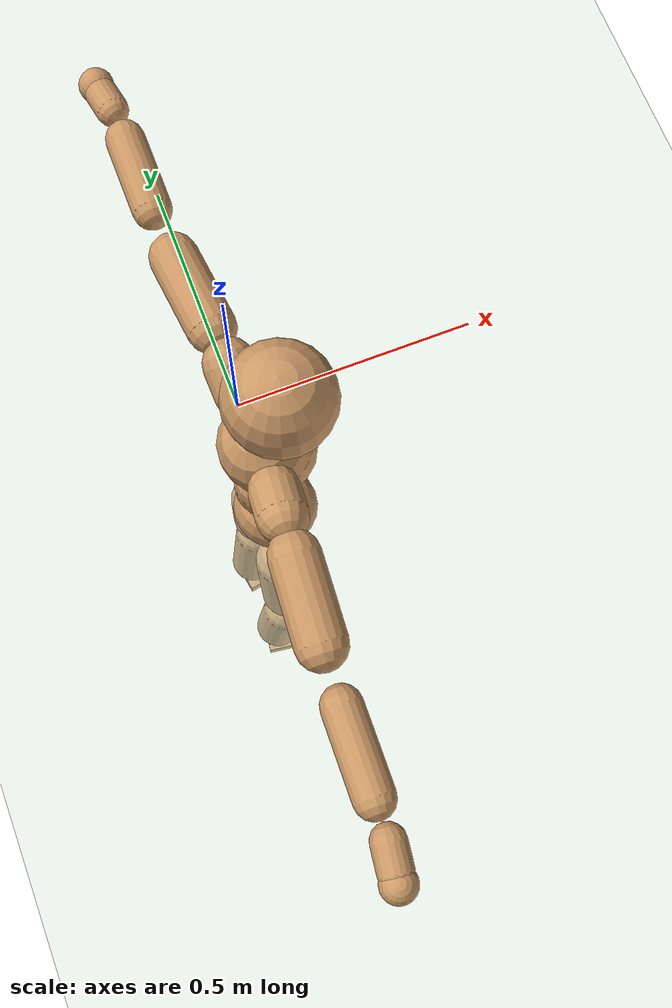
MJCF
<mujoco model="humanoid">
  <compiler coordinate="local"/>
  <default>
    <joint damping="0.0" armature="0.01" stiffness="0.0" limited="true"/>
    <geom conaffinity="1" condim="3" contype="7" margin="0.001" rgba="0.8 0.6 .4 1"/>
  </default>
  <asset>
    <texture type="skybox" builtin="gradient" rgb1=".4 .5 .6" rgb2="0 0 0" width="100" height="100"/>
    <texture builtin="flat" height="1278" mark="cross" markrgb="1 1 1" name="texgeom" random="0.01" rgb1="0.8 0.6 0.4" rgb2="0.8 0.6 0.4" type="cube" width="127"/>
    <texture builtin="checker" height="100" name="texplane" rgb1="0 0 0" rgb2="0.8 0.8 0.8" type="2d" width="100"/>
    <material name="MatPlane" reflectance="0.5" shininess="1" specular="1" texrepeat="60 60" texture="texplane"/>
    <material name="geom" texture="texgeom" texuniform="true"/>
  </asset>
  <worldbody>
    <light cutoff="100" diffuse="1 1 1" dir="-0 0 -1.3" directional="true" exponent="1" pos="0 0 1.3" specular=".1 .1 .1"/>
    <geom conaffinity="1" condim="3" name="floor" pos="0 0 0" rgba="0.8 0.9 0.8 1" size="100 100 .2" type="plane" material="MatPlane"/>
    <body name="Pelvis" pos="-0.0028 -0.2245 0.0141">
      <freejoint name="Pelvis"/>
      <geom type="sphere" contype="1" conaffinity="1" density="500" size="0.0823" pos="0.0000 0.0000 0.0000" name="Pelvis"/>
      <body name="L_Hip" pos="-0.0169 0.0626 -0.0894">
        <joint name="L_Hip_x" type="hinge" pos="0 0 0" axis="1 0 0" stiffness="800" damping="80" armature="0.02" range="-180.0000 180.0000"/>
        <joint name="L_Hip_y" type="hinge" pos="0 0 0" axis="0 1 0" stiffness="800" damping="80" armature="0.02" range="-180.0000 180.0000"/>
        <joint name="L_Hip_z" type="hinge" pos="0 0 0" axis="0 0 1" stiffness="800" damping="80" armature="0.02" range="-180.0000 180.0000"/>
        <geom type="capsule" contype="1" conaffinity="1" density="500" fromto="0.0006 0.0070 -0.0732 0.0024 0.0281 -0.2928" size="0.0559" name="L_Hip"/>
        <body name="L_Knee" pos="0.003 0.0352 -0.366">
          <joint name="L_Knee_x" type="hinge" pos="0 0 0" axis="1 0 0" stiffness="800" damping="80" armature="0.02" range="-180.0000 180.0000"/>
          <joint name="L_Knee_y" type="hinge" pos="0 0 0" axis="0 1 0" stiffness="800" damping="80" armature="0.02" range="-180.0000 180.0000"/>
          <joint name="L_Knee_z" type="hinge" pos="0 0 0" axis="0 0 1" stiffness="800" damping="80" armature="0.02" range="-180.0000 180.0000"/>
          <geom type="capsule" contype="1" conaffinity="1" density="500" fromto="-0.0080 -0.0026 -0.0762 -0.0319 -0.0103 -0.3048" size="0.0501" name="L_Knee"/>
          <body name="L_Ankle" pos="-0.0399 -0.0129 -0.381">
            <joint name="L_Ankle_x" type="hinge" pos="0 0 0" axis="1 0 0" stiffness="800" damping="80" armature="0.02" range="-180.0000 180.0000"/>
            <joint name="L_Ankle_y" type="hinge" pos="0 0 0" axis="0 1 0" stiffness="800" damping="80" armature="0.02" range="-180.0000 180.0000"/>
            <joint name="L_Ankle_z" type="hinge" pos="0 0 0" axis="0 0 1" stiffness="800" damping="80" armature="0.02" range="-180.0000 180.0000"/>
            <geom type="box" contype="1" conaffinity="1" density="500" pos="0.0577 0.0091 -0.0266" size="0.0817 0.0428 0.0193" quat="0.9970 0.0000 0.0000 0.0780" name="L_Ankle"/>
            <body name="L_Toe" pos="0.1153 0.0182 -0.0532">
              <joint name="L_Toe_x" type="hinge" pos="0 0 0" axis="1 0 0" stiffness="500" damping="50" armature="0.02" range="-180.0000 180.0000"/>
              <joint name="L_Toe_y" type="hinge" pos="0 0 0" axis="0 1 0" stiffness="500" damping="50" armature="0.02" range="-180.0000 180.0000"/>
              <joint name="L_Toe_z" type="hinge" pos="0 0 0" axis="0 0 1" stiffness="500" damping="50" armature="0.02" range="-180.0000 180.0000"/>
              <geom type="box" contype="1" conaffinity="1" density="500" pos="0.0000 0.0000 0.0265" size="0.0009 0.0022 0.001" quat="0.9964 0.0000 0.0000 0.0850" name="L_Toe"/>
            </body>
          </body>
        </body>
      </body>
      <body name="R_Hip" pos="-0.0133 -0.0597 -0.0879">
        <joint name="R_Hip_x" type="hinge" pos="0 0 0" axis="1 0 0" stiffness="800" damping="80" armature="0.02" range="-180.0000 180.0000"/>
        <joint name="R_Hip_y" type="hinge" pos="0 0 0" axis="0 1 0" stiffness="800" damping="80" armature="0.02" range="-180.0000 180.0000"/>
        <joint name="R_Hip_z" type="hinge" pos="0 0 0" axis="0 0 1" stiffness="800" damping="80" armature="0.02" range="-180.0000 180.0000"/>
        <geom type="capsule" contype="1" conaffinity="1" density="500" fromto="-0.0002 -0.0079 -0.0749 -0.0008 -0.0315 -0.2996" size="0.0551" name="R_Hip"/>
        <body name="R_Knee" pos="-0.001 -0.0394 -0.3745">
          <joint name="R_Knee_x" type="hinge" pos="0 0 0" axis="1 0 0" stiffness="800" damping="80" armature="0.02" range="-180.0000 180.0000"/>
          <joint name="R_Knee_y" type="hinge" pos="0 0 0" axis="0 1 0" stiffness="800" damping="80" armature="0.02" range="-180.0000 180.0000"/>
          <joint name="R_Knee_z" type="hinge" pos="0 0 0" axis="0 0 1" stiffness="800" damping="80" armature="0.02" range="-180.0000 180.0000"/>
          <geom type="capsule" contype="1" conaffinity="1" density="500" fromto="-0.0075 0.0031 -0.0758 -0.0299 0.0125 -0.3030" size="0.0505" name="R_Knee"/>
          <body name="R_Ankle" pos="-0.0374 0.0156 -0.3788">
            <joint name="R_Ankle_x" type="hinge" pos="0 0 0" axis="1 0 0" stiffness="800" damping="80" armature="0.02" range="-180.0000 180.0000"/>
            <joint name="R_Ankle_y" type="hinge" pos="0 0 0" axis="0 1 0" stiffness="800" damping="80" armature="0.02" range="-180.0000 180.0000"/>
            <joint name="R_Ankle_z" type="hinge" pos="0 0 0" axis="0 0 1" stiffness="800" damping="80" armature="0.02" range="-180.0000 180.0000"/>
            <geom type="box" contype="1" conaffinity="1" density="500" pos="0.0590 -0.0079 -0.0224" size="0.0828 0.0448 0.0186" quat="0.9978 0.0000 0.0000 -0.0668" name="R_Ankle"/>
            <body name="R_Toe" pos="0.118 -0.0159 -0.0449">
              <joint name="R_Toe_x" type="hinge" pos="0 0 0" axis="1 0 0" stiffness="500" damping="50" armature="0.02" range="-180.0000 180.0000"/>
              <joint name="R_Toe_y" type="hinge" pos="0 0 0" axis="0 1 0" stiffness="500" damping="50" armature="0.02" range="-180.0000 180.0000"/>
              <joint name="R_Toe_z" type="hinge" pos="0 0 0" axis="0 0 1" stiffness="500" damping="50" armature="0.02" range="-180.0000 180.0000"/>
              <geom type="box" contype="1" conaffinity="1" density="500" pos="0.0000 0.0000 0.0253" size="0.0008 0.0022 0.0011" quat="0.9983 0.0000 0.0000 -0.0575" name="R_Toe"/>
            </body>
          </body>
        </body>
      </body>
      <body name="Torso" pos="-0.0123 -0.0036 0.1034">
        <joint name="Torso_x" type="hinge" pos="0 0 0" axis="1 0 0" stiffness="1000" damping="100" armature="0.02" range="-180.0000 180.0000"/>
        <joint name="Torso_y" type="hinge" pos="0 0 0" axis="0 1 0" stiffness="1000" damping="100" armature="0.02" range="-180.0000 180.0000"/>
        <joint name="Torso_z" type="hinge" pos="0 0 0" axis="0 0 1" stiffness="1000" damping="100" armature="0.02" range="-180.0000 180.0000"/>
        <geom type="capsule" contype="1" conaffinity="1" density="500" fromto="0.0008 0.0033 0.0904 0.0005 0.0022 0.0602" size="0.0602" name="Torso"/>
        <body name="Spine" pos="0.0013 0.0055 0.1506">
          <joint name="Spine_x" type="hinge" pos="0 0 0" axis="1 0 0" stiffness="1000" damping="100" armature="0.02" range="-180.0000 180.0000"/>
          <joint name="Spine_y" type="hinge" pos="0 0 0" axis="0 1 0" stiffness="1000" damping="100" armature="0.02" range="-180.0000 180.0000"/>
          <joint name="Spine_z" type="hinge" pos="0 0 0" axis="0 0 1" stiffness="1000" damping="100" armature="0.02" range="-180.0000 180.0000"/>
          <geom type="capsule" contype="1" conaffinity="1" density="500" fromto="0.0152 0.0015 0.0308 0.0102 0.0010 0.0206" size="0.0601" name="Spine"/>
          <body name="Chest" pos="0.0254 0.0025 0.0514">
            <joint name="Chest_x" type="hinge" pos="0 0 0" axis="1 0 0" stiffness="1000" damping="100" armature="0.02" range="-180.0000 180.0000"/>
            <joint name="Chest_y" type="hinge" pos="0 0 0" axis="0 1 0" stiffness="1000" damping="100" armature="0.02" range="-180.0000 180.0000"/>
            <joint name="Chest_z" type="hinge" pos="0 0 0" axis="0 0 1" stiffness="1000" damping="100" armature="0.02" range="-180.0000 180.0000"/>
            <geom type="capsule" contype="1" conaffinity="1" density="500" fromto="-0.0216 -0.0009 0.0846 -0.0144 -0.0006 0.0564" size="0.0827" name="Chest"/>
            <body name="Neck" pos="-0.0411 -0.003 0.202">
              <joint name="Neck_x" type="hinge" pos="0 0 0" axis="1 0 0" stiffness="500" damping="50" armature="0.02" range="-180.0000 180.0000"/>
              <joint name="Neck_y" type="hinge" pos="0 0 0" axis="0 1 0" stiffness="500" damping="50" armature="0.02" range="-180.0000 180.0000"/>
              <joint name="Neck_z" type="hinge" pos="0 0 0" axis="0 0 1" stiffness="500" damping="50" armature="0.02" range="-180.0000 180.0000"/>
              <geom type="capsule" contype="1" conaffinity="1" density="500" fromto="0.0101 0.0011 0.0135 0.0404 0.0045 0.0540" size="0.0386" name="Neck"/>
              <body name="Head" pos="0.0505 0.0057 0.0675">
                <joint name="Head_x" type="hinge" pos="0 0 0" axis="1 0 0" stiffness="500" damping="50" armature="0.02" range="-180.0000 180.0000"/>
                <joint name="Head_y" type="hinge" pos="0 0 0" axis="0 1 0" stiffness="500" damping="50" armature="0.02" range="-180.0000 180.0000"/>
                <joint name="Head_z" type="hinge" pos="0 0 0" axis="0 0 1" stiffness="500" damping="50" armature="0.02" range="-180.0000 180.0000"/>
                <geom type="sphere" contype="1" conaffinity="1" density="500" size="0.0952" pos="0.0000 0.0000 0.0000" name="Head"/>
              </body>
            </body>
            <body name="L_Thorax" pos="-0.031 0.0701 0.1121">
              <joint name="L_Thorax_x" type="hinge" pos="0 0 0" axis="1 0 0" stiffness="500" damping="50" armature="0.02" range="-180.0000 180.0000"/>
              <joint name="L_Thorax_y" type="hinge" pos="0 0 0" axis="0 1 0" stiffness="500" damping="50" armature="0.02" range="-180.0000 180.0000"/>
              <joint name="L_Thorax_z" type="hinge" pos="0 0 0" axis="0 0 1" stiffness="500" damping="50" armature="0.02" range="-180.0000 180.0000"/>
              <geom type="capsule" contype="1" conaffinity="1" density="500" fromto="-0.0007 0.0166 0.0063 -0.0028 0.0663 0.0252" size="0.0455" name="L_Thorax"/>
              <body name="L_Shoulder" pos="-0.0036 0.0829 0.0315">
                <joint name="L_Shoulder_x" type="hinge" pos="0 0 0" axis="1 0 0" stiffness="500" damping="50" armature="0.02" range="-720.0000 720.0000"/>
                <joint name="L_Shoulder_y" type="hinge" pos="0 0 0" axis="0 1 0" stiffness="500" damping="50" armature="0.02" range="-720.0000 720.0000"/>
                <joint name="L_Shoulder_z" type="hinge" pos="0 0 0" axis="0 0 1" stiffness="500" damping="50" armature="0.02" range="-720.0000 720.0000"/>
                <geom type="capsule" contype="1" conaffinity="1" density="500" fromto="-0.0053 0.0505 -0.0031 -0.0213 0.2019 -0.0123" size="0.0435" name="L_Shoulder"/>
                <body name="L_Elbow" pos="-0.0267 0.2524 -0.0154">
                  <joint name="L_Elbow_x" type="hinge" pos="0 0 0" axis="1 0 0" stiffness="500" damping="50" armature="0.02" range="-720.0000 720.0000"/>
                  <joint name="L_Elbow_y" type="hinge" pos="0 0 0" axis="0 1 0" stiffness="500" damping="50" armature="0.02" range="-720.0000 720.0000"/>
                  <joint name="L_Elbow_z" type="hinge" pos="0 0 0" axis="0 0 1" stiffness="500" damping="50" armature="0.02" range="-720.0000 720.0000"/>
                  <geom type="capsule" contype="1" conaffinity="1" density="500" fromto="-0.0002 0.0481 0.0015 -0.0007 0.1923 0.0062" size="0.0353" name="L_Elbow"/>
                  <body name="L_Wrist" pos="-0.0009 0.2404 0.0077">
                    <joint name="L_Wrist_x" type="hinge" pos="0 0 0" axis="1 0 0" stiffness="300" damping="30" armature="0.02" range="-180.0000 180.0000"/>
                    <joint name="L_Wrist_y" type="hinge" pos="0 0 0" axis="0 1 0" stiffness="300" damping="30" armature="0.02" range="-180.0000 180.0000"/>
                    <joint name="L_Wrist_z" type="hinge" pos="0 0 0" axis="0 0 1" stiffness="300" damping="30" armature="0.02" range="-180.0000 180.0000"/>
                    <geom type="capsule" contype="1" conaffinity="1" density="500" fromto="-0.0026 0.0157 -0.0020 -0.0106 0.0629 -0.0078" size="0.0293" name="L_Wrist"/>
                    <body name="L_Hand" pos="-0.0132 0.0787 -0.0098">
                      <joint name="L_Hand_x" type="hinge" pos="0 0 0" axis="1 0 0" stiffness="300" damping="30" armature="0.02" range="-180.0000 180.0000"/>
                      <joint name="L_Hand_y" type="hinge" pos="0 0 0" axis="0 1 0" stiffness="300" damping="30" armature="0.02" range="-180.0000 180.0000"/>
                      <joint name="L_Hand_z" type="hinge" pos="0 0 0" axis="0 0 1" stiffness="300" damping="30" armature="0.02" range="-180.0000 180.0000"/>
                      <geom type="sphere" contype="1" conaffinity="1" density="500" size="0.0317" pos="0.0000 0.0000 0.0000" name="L_Hand"/>
                    </body>
                  </body>
                </body>
              </body>
            </body>
            <body name="R_Thorax" pos="-0.0359 -0.0715 0.109">
              <joint name="R_Thorax_x" type="hinge" pos="0 0 0" axis="1 0 0" stiffness="500" damping="50" armature="0.02" range="-180.0000 180.0000"/>
              <joint name="R_Thorax_y" type="hinge" pos="0 0 0" axis="0 1 0" stiffness="500" damping="50" armature="0.02" range="-180.0000 180.0000"/>
              <joint name="R_Thorax_z" type="hinge" pos="0 0 0" axis="0 0 1" stiffness="500" damping="50" armature="0.02" range="-180.0000 180.0000"/>
              <geom type="capsule" contype="1" conaffinity="1" density="500" fromto="-0.0015 -0.0175 0.0063 -0.0059 -0.0702 0.0253" size="0.0443" name="R_Thorax"/>
              <body name="R_Shoulder" pos="-0.0074 -0.0877 0.0316">
                <joint name="R_Shoulder_x" type="hinge" pos="0 0 0" axis="1 0 0" stiffness="500" damping="50" armature="0.02" range="-720.0000 720.0000"/>
                <joint name="R_Shoulder_y" type="hinge" pos="0 0 0" axis="0 1 0" stiffness="500" damping="50" armature="0.02" range="-720.0000 720.0000"/>
                <joint name="R_Shoulder_z" type="hinge" pos="0 0 0" axis="0 0 1" stiffness="500" damping="50" armature="0.02" range="-720.0000 720.0000"/>
                <geom type="capsule" contype="1" conaffinity="1" density="500" fromto="-0.0033 -0.0491 -0.0027 -0.0131 -0.1962 -0.0109" size="0.0447" name="R_Shoulder"/>
                <body name="R_Elbow" pos="-0.0164 -0.2453 -0.0136">
                  <joint name="R_Elbow_x" type="hinge" pos="0 0 0" axis="1 0 0" stiffness="500" damping="50" armature="0.02" range="-720.0000 720.0000"/>
                  <joint name="R_Elbow_y" type="hinge" pos="0 0 0" axis="0 1 0" stiffness="500" damping="50" armature="0.02" range="-720.0000 720.0000"/>
                  <joint name="R_Elbow_z" type="hinge" pos="0 0 0" axis="0 0 1" stiffness="500" damping="50" armature="0.02" range="-720.0000 720.0000"/>
                  <geom type="capsule" contype="1" conaffinity="1" density="500" fromto="-0.0012 -0.0492 0.0010 -0.0049 -0.1968 0.0041" size="0.0351" name="R_Elbow"/>
                  <body name="R_Wrist" pos="-0.0062 -0.2461 0.0051">
                    <joint name="R_Wrist_x" type="hinge" pos="0 0 0" axis="1 0 0" stiffness="300" damping="30" armature="0.02" range="-180.0000 180.0000"/>
                    <joint name="R_Wrist_y" type="hinge" pos="0 0 0" axis="0 1 0" stiffness="300" damping="30" armature="0.02" range="-180.0000 180.0000"/>
                    <joint name="R_Wrist_z" type="hinge" pos="0 0 0" axis="0 0 1" stiffness="300" damping="30" armature="0.02" range="-180.0000 180.0000"/>
                    <geom type="capsule" contype="1" conaffinity="1" density="500" fromto="-0.0020 -0.0157 -0.0014 -0.0080 -0.0628 -0.0056" size="0.0296" name="R_Wrist"/>
                    <body name="R_Hand" pos="-0.01 -0.0785 -0.007">
                      <joint name="R_Hand_x" type="hinge" pos="0 0 0" axis="1 0 0" stiffness="300" damping="30" armature="0.02" range="-180.0000 180.0000"/>
                      <joint name="R_Hand_y" type="hinge" pos="0 0 0" axis="0 1 0" stiffness="300" damping="30" armature="0.02" range="-180.0000 180.0000"/>
                      <joint name="R_Hand_z" type="hinge" pos="0 0 0" axis="0 0 1" stiffness="300" damping="30" armature="0.02" range="-180.0000 180.0000"/>
                      <geom type="sphere" contype="1" conaffinity="1" density="500" size="0.0314" pos="0.0000 0.0000 0.0000" name="R_Hand"/>
                    </body>
                  </body>
                </body>
              </body>
            </body>
          </body>
        </body>
      </body>
    </body>
  </worldbody>
  <actuator>
    <motor name="L_Hip_x" joint="L_Hip_x" gear="500"/>
    <motor name="L_Hip_y" joint="L_Hip_y" gear="500"/>
    <motor name="L_Hip_z" joint="L_Hip_z" gear="500"/>
    <motor name="L_Knee_x" joint="L_Knee_x" gear="500"/>
    <motor name="L_Knee_y" joint="L_Knee_y" gear="500"/>
    <motor name="L_Knee_z" joint="L_Knee_z" gear="500"/>
    <motor name="L_Ankle_x" joint="L_Ankle_x" gear="500"/>
    <motor name="L_Ankle_y" joint="L_Ankle_y" gear="500"/>
    <motor name="L_Ankle_z" joint="L_Ankle_z" gear="500"/>
    <motor name="L_Toe_x" joint="L_Toe_x" gear="500"/>
    <motor name="L_Toe_y" joint="L_Toe_y" gear="500"/>
    <motor name="L_Toe_z" joint="L_Toe_z" gear="500"/>
    <motor name="R_Hip_x" joint="R_Hip_x" gear="500"/>
    <motor name="R_Hip_y" joint="R_Hip_y" gear="500"/>
    <motor name="R_Hip_z" joint="R_Hip_z" gear="500"/>
    <motor name="R_Knee_x" joint="R_Knee_x" gear="500"/>
    <motor name="R_Knee_y" joint="R_Knee_y" gear="500"/>
    <motor name="R_Knee_z" joint="R_Knee_z" gear="500"/>
    <motor name="R_Ankle_x" joint="R_Ankle_x" gear="500"/>
    <motor name="R_Ankle_y" joint="R_Ankle_y" gear="500"/>
    <motor name="R_Ankle_z" joint="R_Ankle_z" gear="500"/>
    <motor name="R_Toe_x" joint="R_Toe_x" gear="500"/>
    <motor name="R_Toe_y" joint="R_Toe_y" gear="500"/>
    <motor name="R_Toe_z" joint="R_Toe_z" gear="500"/>
    <motor name="Torso_x" joint="Torso_x" gear="500"/>
    <motor name="Torso_y" joint="Torso_y" gear="500"/>
    <motor name="Torso_z" joint="Torso_z" gear="500"/>
    <motor name="Spine_x" joint="Spine_x" gear="500"/>
    <motor name="Spine_y" joint="Spine_y" gear="500"/>
    <motor name="Spine_z" joint="Spine_z" gear="500"/>
    <motor name="Chest_x" joint="Chest_x" gear="500"/>
    <motor name="Chest_y" joint="Chest_y" gear="500"/>
    <motor name="Chest_z" joint="Chest_z" gear="500"/>
    <motor name="Neck_x" joint="Neck_x" gear="500"/>
    <motor name="Neck_y" joint="Neck_y" gear="500"/>
    <motor name="Neck_z" joint="Neck_z" gear="500"/>
    <motor name="Head_x" joint="Head_x" gear="500"/>
    <motor name="Head_y" joint="Head_y" gear="500"/>
    <motor name="Head_z" joint="Head_z" gear="500"/>
    <motor name="L_Thorax_x" joint="L_Thorax_x" gear="500"/>
    <motor name="L_Thorax_y" joint="L_Thorax_y" gear="500"/>
    <motor name="L_Thorax_z" joint="L_Thorax_z" gear="500"/>
    <motor name="L_Shoulder_x" joint="L_Shoulder_x" gear="500"/>
    <motor name="L_Shoulder_y" joint="L_Shoulder_y" gear="500"/>
    <motor name="L_Shoulder_z" joint="L_Shoulder_z" gear="500"/>
    <motor name="L_Elbow_x" joint="L_Elbow_x" gear="500"/>
    <motor name="L_Elbow_y" joint="L_Elbow_y" gear="500"/>
    <motor name="L_Elbow_z" joint="L_Elbow_z" gear="500"/>
    <motor name="L_Wrist_x" joint="L_Wrist_x" gear="500"/>
    <motor name="L_Wrist_y" joint="L_Wrist_y" gear="500"/>
    <motor name="L_Wrist_z" joint="L_Wrist_z" gear="500"/>
    <motor name="L_Hand_x" joint="L_Hand_x" gear="500"/>
    <motor name="L_Hand_y" joint="L_Hand_y" gear="500"/>
    <motor name="L_Hand_z" joint="L_Hand_z" gear="500"/>
    <motor name="R_Thorax_x" joint="R_Thorax_x" gear="500"/>
    <motor name="R_Thorax_y" joint="R_Thorax_y" gear="500"/>
    <motor name="R_Thorax_z" joint="R_Thorax_z" gear="500"/>
    <motor name="R_Shoulder_x" joint="R_Shoulder_x" gear="500"/>
    <motor name="R_Shoulder_y" joint="R_Shoulder_y" gear="500"/>
    <motor name="R_Shoulder_z" joint="R_Shoulder_z" gear="500"/>
    <motor name="R_Elbow_x" joint="R_Elbow_x" gear="500"/>
    <motor name="R_Elbow_y" joint="R_Elbow_y" gear="500"/>
    <motor name="R_Elbow_z" joint="R_Elbow_z" gear="500"/>
    <motor name="R_Wrist_x" joint="R_Wrist_x" gear="500"/>
    <motor name="R_Wrist_y" joint="R_Wrist_y" gear="500"/>
    <motor name="R_Wrist_z" joint="R_Wrist_z" gear="500"/>
    <motor name="R_Hand_x" joint="R_Hand_x" gear="500"/>
    <motor name="R_Hand_y" joint="R_Hand_y" gear="500"/>
    <motor name="R_Hand_z" joint="R_Hand_z" gear="500"/>
  </actuator>
  <contact>
    <exclude body1="Torso" body2="Chest"/>
    <exclude body1="Head" body2="Chest"/>
    <exclude body1="R_Knee" body2="R_Toe"/>
    <exclude body1="R_Knee" body2="L_Ankle"/>
    <exclude body1="R_Knee" body2="L_Toe"/>
    <exclude body1="L_Knee" body2="L_Toe"/>
    <exclude body1="L_Knee" body2="R_Ankle"/>
    <exclude body1="L_Knee" body2="R_Toe"/>
    <exclude body1="L_Shoulder" body2="Chest"/>
    <exclude body1="R_Shoulder" body2="Chest"/>
  </contact>
  <sensor/>
  <size njmax="700" nconmax="700"/>
</mujoco>
